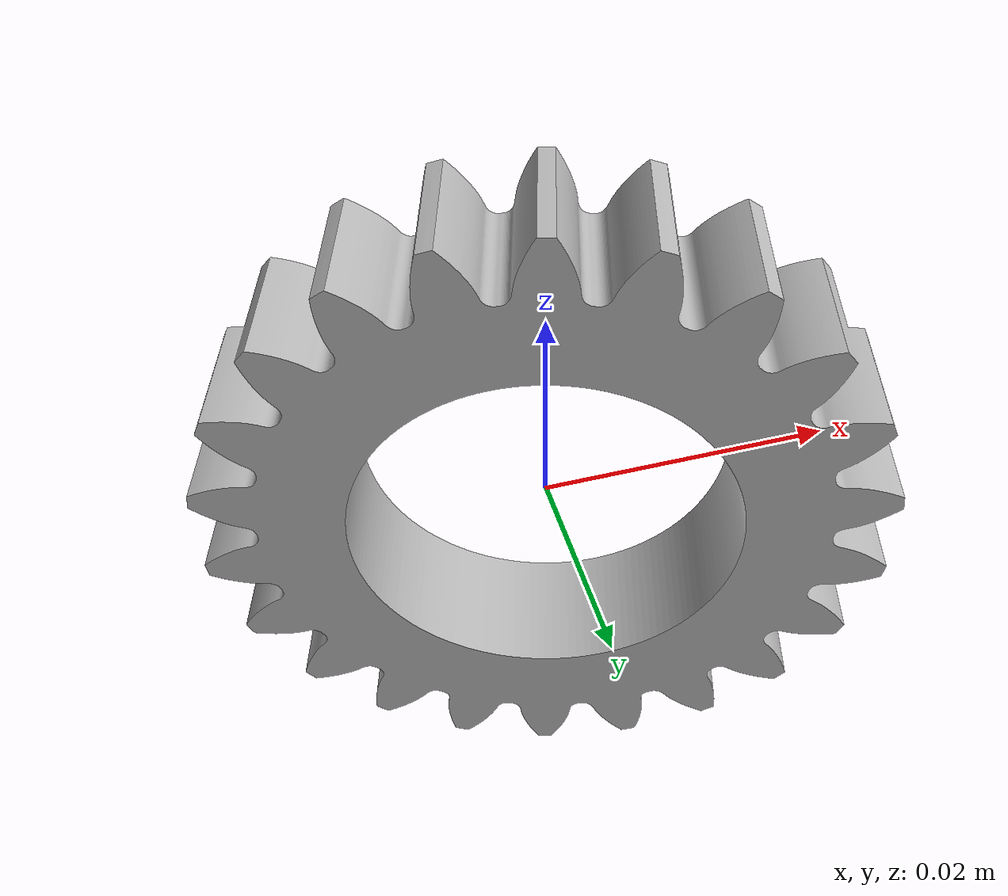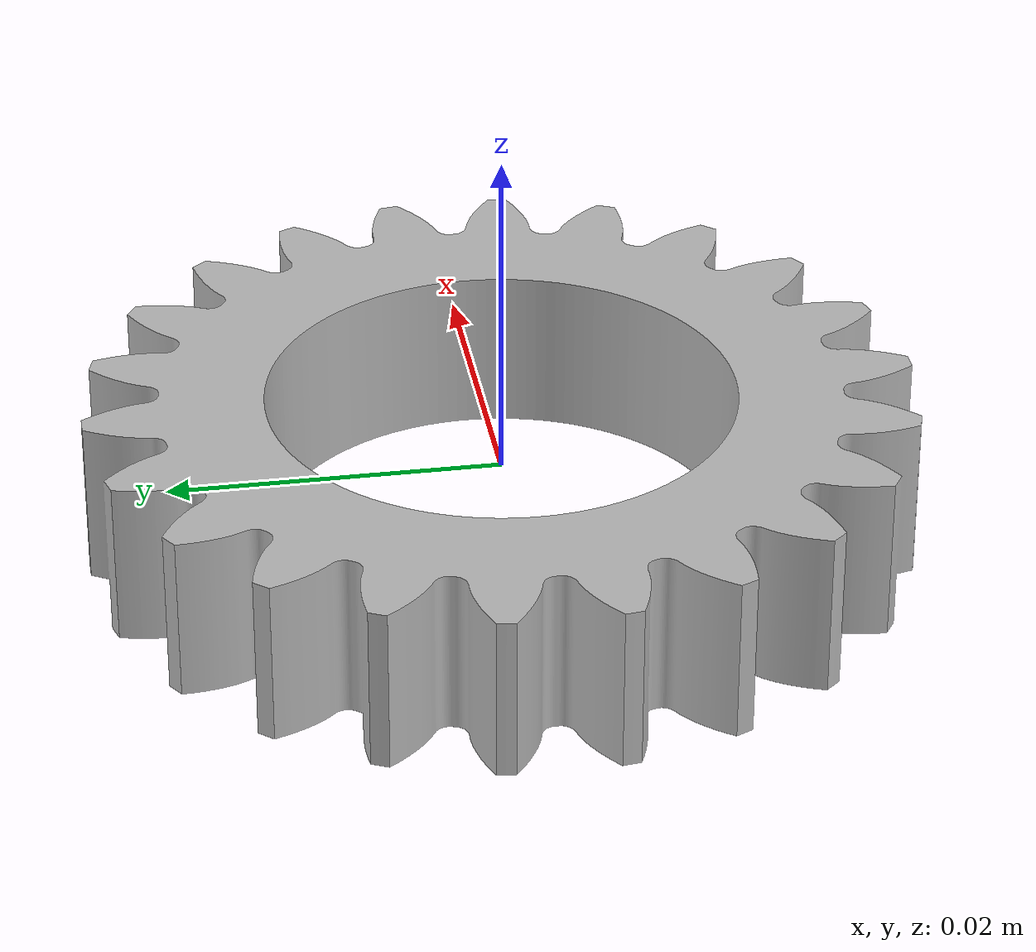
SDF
<?xml version="1.0" ?>
<sdf version="1.4">
    <model name="challenge_sun_wheel">
    <static>false</static>
    <link name="link">
        <pose>0 0 0 0 0 0</pose>
        <collision name="collision">
            <geometry>
                <mesh>
                    <uri>model://challenge_sun_wheel/mesh/challenge_sun_wheel.stl</uri>
                    <scale>0.001 0.001 0.001</scale>
                </mesh>
            </geometry>
        </collision>
        <visual name="visual">
            <geometry>
                <mesh>
                    <uri>model://challenge_sun_wheel/mesh/challenge_sun_wheel.stl</uri>
                    <scale>0.001 0.001 0.001</scale>
                </mesh>
            </geometry>
        </visual>
        </link>
    </model>
</sdf>
